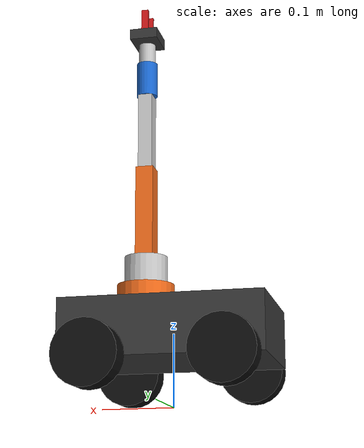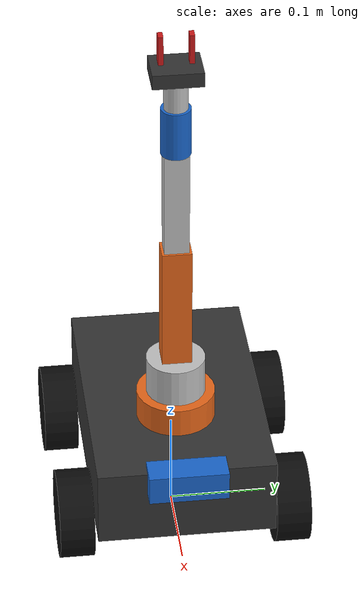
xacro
<?xml version="1.0"?>
<robot xmlns:xacro="http://www.ros.org/wiki/xacro" name="physical_ai_rover">

  <!-- Color Materials -->
  <material name="dark_grey"><color rgba="0.2 0.2 0.2 1.0"/></material>
  <material name="blue"><color rgba="0.1 0.4 0.8 1.0"/></material>
  <material name="orange"><color rgba="0.9 0.4 0.1 1.0"/></material>
  <material name="black"><color rgba="0.05 0.05 0.05 1.0"/></material>
  <material name="red"><color rgba="0.8 0.1 0.1 1.0"/></material>
  <material name="silver"><color rgba="0.75 0.75 0.75 1.0"/></material>

  <!-- Robot Footprint & Base Link -->
  <link name="base_footprint"/>

  <joint name="base_footprint_joint" type="fixed">
    <parent link="base_footprint"/>
    <child link="base_link"/>
    <origin xyz="0 0 0.06" rpy="0 0 0"/>
  </joint>

  <link name="base_link">
    <visual>
      <origin xyz="0 0 0.04" rpy="0 0 0"/>
      <geometry>
        <box size="0.28 0.18 0.08"/>
      </geometry>
      <material name="dark_grey"/>
    </visual>
    <collision>
      <origin xyz="0 0 0.04" rpy="0 0 0"/>
      <geometry>
        <box size="0.28 0.18 0.08"/>
      </geometry>
    </collision>
  </link>

  <!-- Macro for Wheels (4WD) -->
  <xacro:macro name="wheel" params="prefix x_reflect y_reflect">
    <link name="${prefix}_wheel_link">
      <visual>
        <origin xyz="0 0 0" rpy="1.570796 0 0"/>
        <geometry>
          <cylinder radius="0.045" length="0.035"/>
        </geometry>
        <material name="black"/>
      </visual>
      <collision>
        <origin xyz="0 0 0" rpy="1.570796 0 0"/>
        <geometry>
          <cylinder radius="0.045" length="0.035"/>
        </geometry>
      </collision>
    </link>

    <joint name="${prefix}_wheel_joint" type="continuous">
      <parent link="base_link"/>
      <child link="${prefix}_wheel_link"/>
      <origin xyz="${x_reflect * 0.09} ${y_reflect * 0.11} 0" rpy="0 0 0"/>
      <axis xyz="0 1 0"/>
    </joint>
  </xacro:macro>

  <xacro:wheel prefix="front_left" x_reflect="1" y_reflect="1"/>
  <xacro:wheel prefix="front_right" x_reflect="1" y_reflect="-1"/>
  <xacro:wheel prefix="rear_left" x_reflect="-1" y_reflect="1"/>
  <xacro:wheel prefix="rear_right" x_reflect="-1" y_reflect="-1"/>

  <!-- IMU Sensor Link -->
  <link name="imu_link">
    <visual>
      <geometry><box size="0.02 0.02 0.005"/></geometry>
      <material name="red"/>
    </visual>
  </link>
  <joint name="imu_joint" type="fixed">
    <parent link="base_link"/>
    <child link="imu_link"/>
    <origin xyz="0 0 0.085" rpy="0 0 0"/>
  </joint>

  <!-- USB Webcam Frame -->
  <link name="camera_link">
    <visual>
      <origin xyz="0 0 0" rpy="0 0 0"/>
      <geometry><box size="0.03 0.08 0.03"/></geometry>
      <material name="blue"/>
    </visual>
  </link>
  <joint name="camera_joint" type="fixed">
    <parent link="base_link"/>
    <child link="camera_link"/>
    <origin xyz="0.14 0 0.07" rpy="0 0 0"/>
  </joint>

  <link name="camera_optical_frame"/>
  <joint name="camera_optical_joint" type="fixed">
    <parent link="camera_link"/>
    <child link="camera_optical_frame"/>
    <origin xyz="0 0 0" rpy="-1.570796 0 -1.570796"/>
  </joint>

  <!-- ================= 6-DOF ROBOT ARM ================= -->
  <link name="arm_base_link">
    <visual>
      <origin xyz="0 0 0.015" rpy="0 0 0"/>
      <geometry><cylinder radius="0.04" length="0.03"/></geometry>
      <material name="orange"/>
    </visual>
  </link>
  <joint name="arm_base_joint" type="fixed">
    <parent link="base_link"/>
    <child link="arm_base_link"/>
    <origin xyz="0.04 0 0.08" rpy="0 0 0"/>
  </joint>

  <!-- Joint 1: Base Yaw -->
  <joint name="arm_joint1" type="revolute">
    <parent link="arm_base_link"/>
    <child link="arm_link1"/>
    <origin xyz="0 0 0.03" rpy="0 0 0"/>
    <axis xyz="0 0 1"/>
    <limit lower="-3.14" upper="3.14" effort="10" velocity="1.5"/>
  </joint>
  <link name="arm_link1">
    <visual>
      <origin xyz="0 0 0.02" rpy="0 0 0"/>
      <geometry><cylinder radius="0.03" length="0.04"/></geometry>
      <material name="silver"/>
    </visual>
  </link>

  <!-- Joint 2: Shoulder Pitch -->
  <joint name="arm_joint2" type="revolute">
    <parent link="arm_link1"/>
    <child link="arm_link2"/>
    <origin xyz="0 0 0.04" rpy="0 0 0"/>
    <axis xyz="0 1 0"/>
    <limit lower="-1.57" upper="1.57" effort="15" velocity="1.5"/>
  </joint>
  <link name="arm_link2">
    <visual>
      <origin xyz="0 0 0.06" rpy="0 0 0"/>
      <geometry><box size="0.025 0.03 0.14"/></geometry>
      <material name="orange"/>
    </visual>
  </link>

  <!-- Joint 3: Elbow Pitch -->
  <joint name="arm_joint3" type="revolute">
    <parent link="arm_link2"/>
    <child link="arm_link3"/>
    <origin xyz="0 0 0.13" rpy="0 0 0"/>
    <axis xyz="0 1 0"/>
    <limit lower="-2.0" upper="2.0" effort="10" velocity="1.5"/>
  </joint>
  <link name="arm_link3">
    <visual>
      <origin xyz="0 0 0.05" rpy="0 0 0"/>
      <geometry><box size="0.02 0.025 0.12"/></geometry>
      <material name="silver"/>
    </visual>
  </link>

  <!-- Joint 4: Wrist Pitch -->
  <joint name="arm_joint4" type="revolute">
    <parent link="arm_link3"/>
    <child link="arm_link4"/>
    <origin xyz="0 0 0.11" rpy="0 0 0"/>
    <axis xyz="0 1 0"/>
    <limit lower="-1.57" upper="1.57" effort="5" velocity="2.0"/>
  </joint>
  <link name="arm_link4">
    <visual>
      <origin xyz="0 0 0.025" rpy="0 0 0"/>
      <geometry><cylinder radius="0.015" length="0.05"/></geometry>
      <material name="blue"/>
    </visual>
  </link>

  <!-- Joint 5: Wrist Roll -->
  <joint name="arm_joint5" type="revolute">
    <parent link="arm_link4"/>
    <child link="arm_link5"/>
    <origin xyz="0 0 0.05" rpy="0 0 0"/>
    <axis xyz="0 0 1"/>
    <limit lower="-3.14" upper="3.14" effort="5" velocity="2.0"/>
  </joint>
  <link name="arm_link5">
    <visual>
      <origin xyz="0 0 0.015" rpy="0 0 0"/>
      <geometry><cylinder radius="0.012" length="0.03"/></geometry>
      <material name="silver"/>
    </visual>
  </link>

  <!-- Joint 6: Wrist Yaw / End Effector Flange -->
  <joint name="arm_joint6" type="revolute">
    <parent link="arm_link5"/>
    <child link="arm_link6"/>
    <origin xyz="0 0 0.03" rpy="0 0 0"/>
    <axis xyz="1 0 0"/>
    <limit lower="-1.57" upper="1.57" effort="5" velocity="2.0"/>
  </joint>
  <link name="arm_link6">
    <visual>
      <origin xyz="0 0 0.01" rpy="0 0 0"/>
      <geometry><box size="0.04 0.05 0.015"/></geometry>
      <material name="dark_grey"/>
    </visual>
  </link>

  <!-- Gripper Fingers -->
  <joint name="gripper_joint" type="prismatic">
    <parent link="arm_link6"/>
    <child link="gripper_left_finger"/>
    <origin xyz="0 0.015 0.02" rpy="0 0 0"/>
    <axis xyz="0 1 0"/>
    <limit lower="0.0" upper="0.02" effort="5" velocity="0.5"/>
  </joint>
  <link name="gripper_left_finger">
    <visual>
      <origin xyz="0 0 0.015" rpy="0 0 0"/>
      <geometry><box size="0.01 0.005 0.03"/></geometry>
      <material name="red"/>
    </visual>
  </link>

  <joint name="gripper_right_joint" type="prismatic">
    <parent link="arm_link6"/>
    <child link="gripper_right_finger"/>
    <origin xyz="0 -0.015 0.02" rpy="0 0 0"/>
    <axis xyz="0 -1 0"/>
    <limit lower="0.0" upper="0.02" effort="5" velocity="0.5"/>
    <mimic joint="gripper_joint" multiplier="1" offset="0"/>
  </joint>
  <link name="gripper_right_finger">
    <visual>
      <origin xyz="0 0 0.015" rpy="0 0 0"/>
      <geometry><box size="0.01 0.005 0.03"/></geometry>
      <material name="red"/>
    </visual>
  </link>

</robot>
